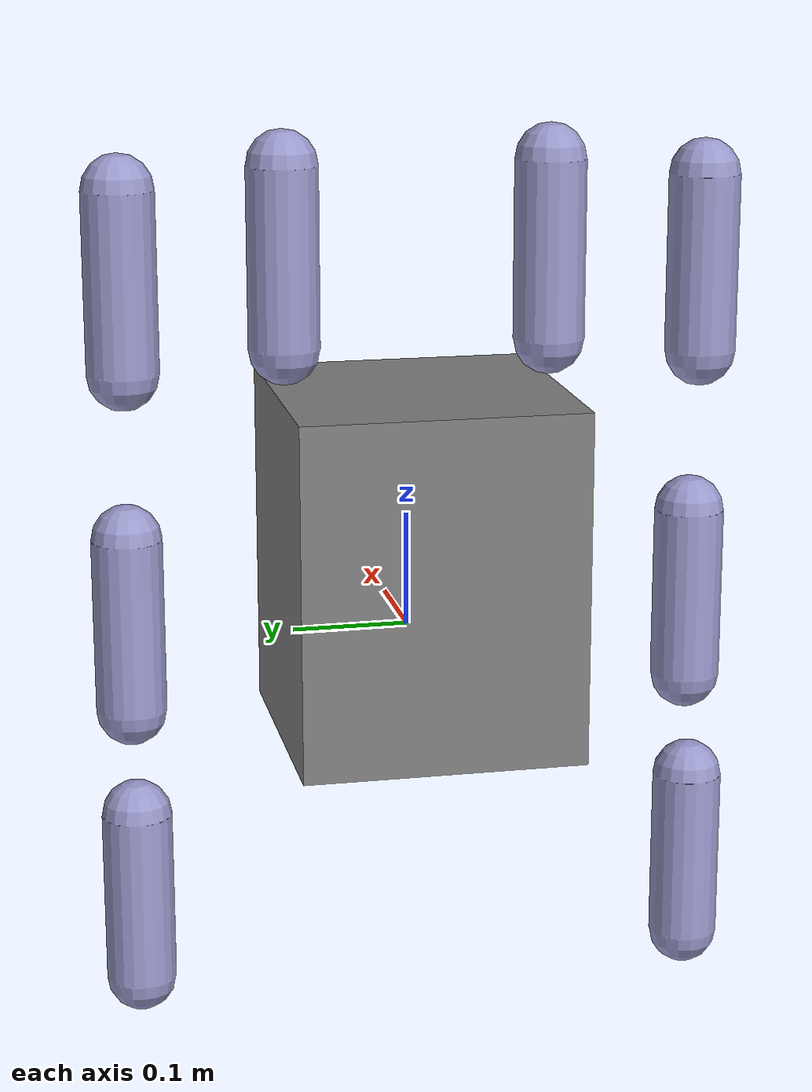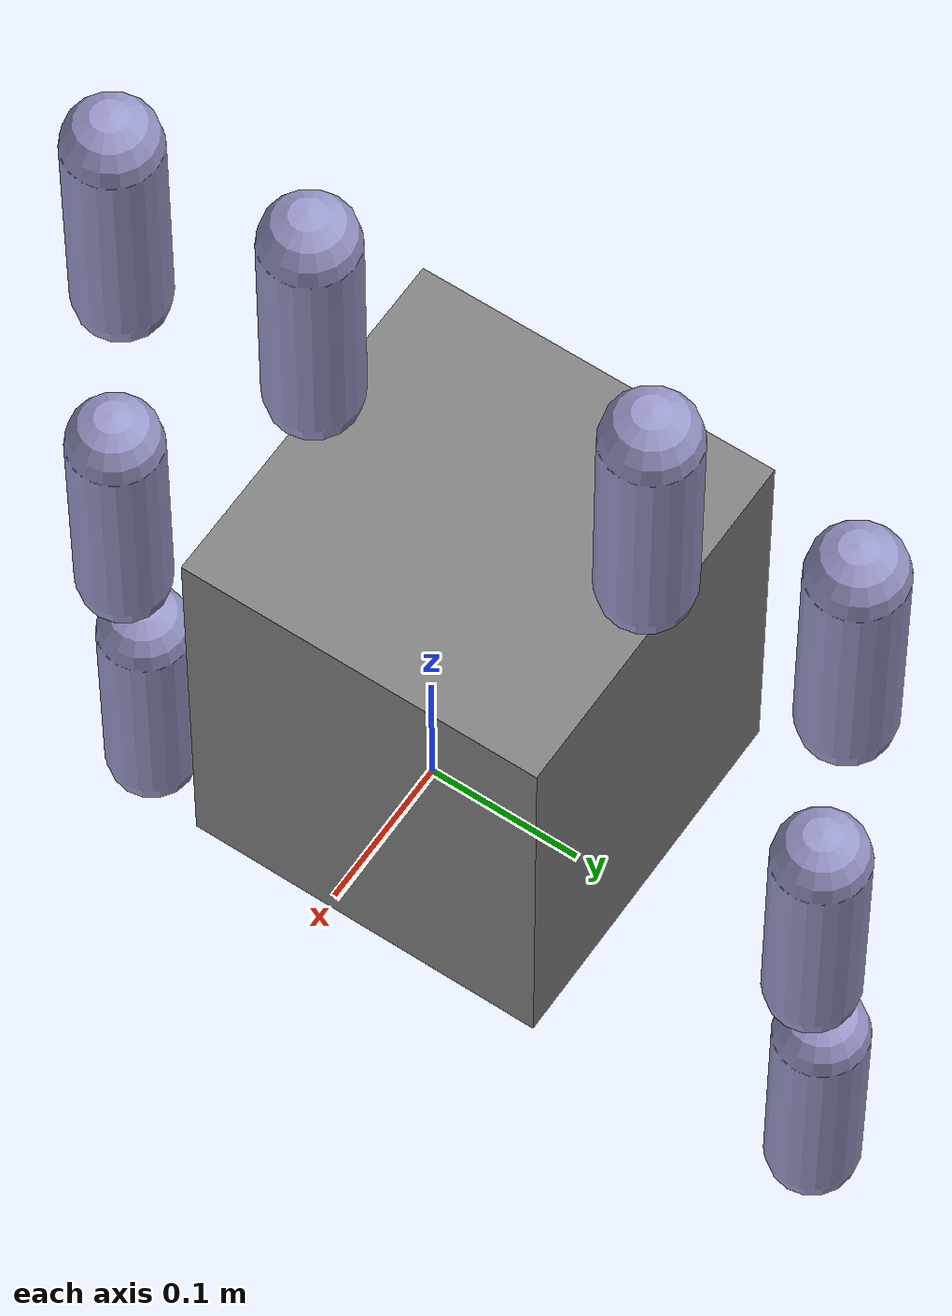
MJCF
<mujoco model="l3_4_mjx">
  <!-- AUTO-GENERATED by scripts/dev/build_l3_4_assets.py from l3_4.xml.
       Arms-only kinematic tree for MJX FK (grid 根位姿搜索 / 训练都走它)。
       手指/mesh/材质/腰腿自由度全丢掉；躯干焊在世界上。惯量和几何是占位。 -->
  <compiler angle="radian"/>
  <option integrator="implicitfast" timestep="0.004" iterations="4" ls_iterations="8"/>
  <default>
    <joint damping="10" frictionloss="0"/>
    <position inheritrange="1"/>
    <geom contype="0" conaffinity="0"/>
  </default>
  <worldbody>
    <body name="waist_pitch_link" pos="-0.04724 0 0.0707" quat="1 0 0 0">
      <inertial pos="0 0 0" mass="10" diaginertia="0.5 0.5 0.5"/>
      <geom type="box" size="0.12 0.12 0.15" rgba="0.5 0.5 0.5 1"/>
        <body name="left_shoulder_pitch_link" pos="0 0.112 0.338" quat="1 0 0 0">
          <joint name="left_shoulder_pitch_joint" type="hinge" axis="0 1 0" range="-2.79 2.79"/>
          <inertial pos="0 0 0" mass="0.8" diaginertia="0.01 0.01 0.01"/>
          <geom type="capsule" size="0.03" fromto="0 0 0 0 0 -0.15" rgba="0.6 0.6 0.8 1"/>
          <body name="left_shoulder_roll_link" pos="0 0.133 -0.016" quat="1 0 0 0">
            <joint name="left_shoulder_roll_joint" type="hinge" axis="1 0 0" range="-0.56 2.53"/>
            <inertial pos="0 0 0" mass="0.8" diaginertia="0.01 0.01 0.01"/>
            <geom type="capsule" size="0.03" fromto="0 0 0 0 0 -0.15" rgba="0.6 0.6 0.8 1"/>
            <body name="left_arm_yaw_link" pos="0 0 0" quat="1 0 0 0">
              <joint name="left_arm_yaw_joint" type="hinge" axis="0 0 1" range="-4.36 1.22"/>
              <inertial pos="0 0 0" mass="0.8" diaginertia="0.01 0.01 0.01"/>
              <geom type="capsule" size="0.03" fromto="0 0 0 0 0 -0.15" rgba="0.6 0.6 0.8 1"/>
              <body name="left_elbow_pitch_link" pos="0.016 0 -0.294" quat="1 0 0 0">
                <joint name="left_elbow_pitch_joint" type="hinge" axis="0 1 0" range="-2.36 0.7"/>
                <inertial pos="0 0 0" mass="0.8" diaginertia="0.01 0.01 0.01"/>
                <geom type="capsule" size="0.03" fromto="0 0 0 0 0 -0.15" rgba="0.6 0.6 0.8 1"/>
                <body name="left_elbow_yaw_link" pos="-0.016 0 -0.239" quat="1 0 0 0">
                  <joint name="left_elbow_yaw_joint" type="hinge" axis="0 0 1" range="-2.79 2.79"/>
                  <inertial pos="0 0 0" mass="0.8" diaginertia="0.01 0.01 0.01"/>
                  <geom type="capsule" size="0.03" fromto="0 0 0 0 0 -0.15" rgba="0.6 0.6 0.8 1"/>
                  <body name="left_wrist_pitch_link" pos="0 0 0" quat="1 0 0 0">
                    <joint name="left_wrist_pitch_joint" type="hinge" axis="0 1 0" range="-0.79 0.79"/>
                    <inertial pos="0 0 0" mass="0.8" diaginertia="0.01 0.01 0.01"/>
                    <geom type="capsule" size="0.03" fromto="0 0 0 0 0 -0.15" rgba="0.6 0.6 0.8 1"/>
                    <body name="left_wrist_roll_link" pos="0 0 0" quat="1 0 0 0">
                      <joint name="left_wrist_roll_joint" type="hinge" axis="1 0 0" range="-1.57 1.57"/>
                      <inertial pos="0 0 0" mass="0.8" diaginertia="0.01 0.01 0.01"/>
                      <geom type="capsule" size="0.03" fromto="0 0 0 0 0 -0.15" rgba="0.6 0.6 0.8 1"/>
                      <body name="left_hand_frame" pos="0 0 -0.051" quat="0.052402282 -0.072032605 -0.6909836 0.71736112"/>
                    </body>
                  </body>
                </body>
              </body>
            </body>
          </body>
        </body>
        <body name="right_shoulder_pitch_link" pos="0 -0.112 0.338" quat="1 0 0 0">
          <joint name="right_shoulder_pitch_joint" type="hinge" axis="0 1 0" range="-2.79 2.79"/>
          <inertial pos="0 0 0" mass="0.8" diaginertia="0.01 0.01 0.01"/>
          <geom type="capsule" size="0.03" fromto="0 0 0 0 0 -0.15" rgba="0.6 0.6 0.8 1"/>
          <body name="right_shoulder_roll_link" pos="0 -0.133 -0.016" quat="1 0 0 0">
            <joint name="right_shoulder_roll_joint" type="hinge" axis="1 0 0" range="-2.53 0.56"/>
            <inertial pos="0 0 0" mass="0.8" diaginertia="0.01 0.01 0.01"/>
            <geom type="capsule" size="0.03" fromto="0 0 0 0 0 -0.15" rgba="0.6 0.6 0.8 1"/>
            <body name="right_arm_yaw_link" pos="0 0 0" quat="1 0 0 0">
              <joint name="right_arm_yaw_joint" type="hinge" axis="0 0 1" range="-1.22 4.36"/>
              <inertial pos="0 0 0" mass="0.8" diaginertia="0.01 0.01 0.01"/>
              <geom type="capsule" size="0.03" fromto="0 0 0 0 0 -0.15" rgba="0.6 0.6 0.8 1"/>
              <body name="right_elbow_pitch_link" pos="0.016 0 -0.294" quat="1 0 0 0">
                <joint name="right_elbow_pitch_joint" type="hinge" axis="0 1 0" range="-2.36 0.7"/>
                <inertial pos="0 0 0" mass="0.8" diaginertia="0.01 0.01 0.01"/>
                <geom type="capsule" size="0.03" fromto="0 0 0 0 0 -0.15" rgba="0.6 0.6 0.8 1"/>
                <body name="right_elbow_yaw_link" pos="-0.016 0 -0.239" quat="1 0 0 0">
                  <joint name="right_elbow_yaw_joint" type="hinge" axis="0 0 1" range="-2.79 2.79"/>
                  <inertial pos="0 0 0" mass="0.8" diaginertia="0.01 0.01 0.01"/>
                  <geom type="capsule" size="0.03" fromto="0 0 0 0 0 -0.15" rgba="0.6 0.6 0.8 1"/>
                  <body name="right_wrist_pitch_link" pos="0 0 0" quat="1 0 0 0">
                    <joint name="right_wrist_pitch_joint" type="hinge" axis="0 1 0" range="-0.79 0.79"/>
                    <inertial pos="0 0 0" mass="0.8" diaginertia="0.01 0.01 0.01"/>
                    <geom type="capsule" size="0.03" fromto="0 0 0 0 0 -0.15" rgba="0.6 0.6 0.8 1"/>
                    <body name="right_wrist_roll_link" pos="0 0 0" quat="1 0 0 0">
                      <joint name="right_wrist_roll_joint" type="hinge" axis="1 0 0" range="-1.57 1.57"/>
                      <inertial pos="0 0 0" mass="0.8" diaginertia="0.01 0.01 0.01"/>
                      <geom type="capsule" size="0.03" fromto="0 0 0 0 0 -0.15" rgba="0.6 0.6 0.8 1"/>
                      <body name="right_hand_frame" pos="0 0 -0.051" quat="0.71736164 -0.69098405 -0.072027015 0.052396836"/>
                    </body>
                  </body>
                </body>
              </body>
            </body>
          </body>
        </body>
    </body>
  </worldbody>
  <actuator>
    <position name="left_shoulder_pitch_joint_servo" joint="left_shoulder_pitch_joint" kp="50"/>
    <position name="left_shoulder_roll_joint_servo" joint="left_shoulder_roll_joint" kp="50"/>
    <position name="left_arm_yaw_joint_servo" joint="left_arm_yaw_joint" kp="50"/>
    <position name="left_elbow_pitch_joint_servo" joint="left_elbow_pitch_joint" kp="50"/>
    <position name="left_elbow_yaw_joint_servo" joint="left_elbow_yaw_joint" kp="50"/>
    <position name="left_wrist_pitch_joint_servo" joint="left_wrist_pitch_joint" kp="50"/>
    <position name="left_wrist_roll_joint_servo" joint="left_wrist_roll_joint" kp="50"/>
    <position name="right_shoulder_pitch_joint_servo" joint="right_shoulder_pitch_joint" kp="50"/>
    <position name="right_shoulder_roll_joint_servo" joint="right_shoulder_roll_joint" kp="50"/>
    <position name="right_arm_yaw_joint_servo" joint="right_arm_yaw_joint" kp="50"/>
    <position name="right_elbow_pitch_joint_servo" joint="right_elbow_pitch_joint" kp="50"/>
    <position name="right_elbow_yaw_joint_servo" joint="right_elbow_yaw_joint" kp="50"/>
    <position name="right_wrist_pitch_joint_servo" joint="right_wrist_pitch_joint" kp="50"/>
    <position name="right_wrist_roll_joint_servo" joint="right_wrist_roll_joint" kp="50"/>
  </actuator>
</mujoco>
